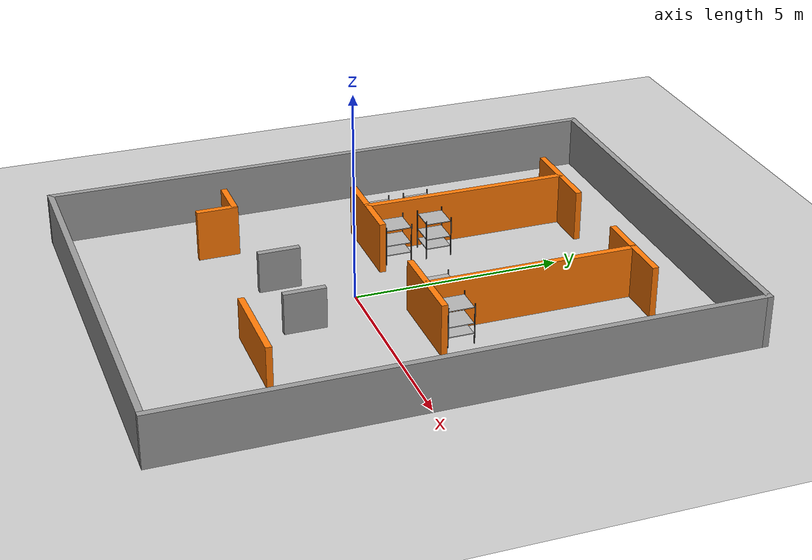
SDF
<sdf version="1.7">
 <world name="default">
  <model name="ground_plane">
   <static>1</static>
   <link name="link">
    <collision name="collision">
     <geometry><plane><normal>0 0 1</normal><size>100 100</size></plane></geometry>
     <surface><friction><ode><mu>100</mu><mu2>50</mu2></ode></friction></surface>
    </collision>
    <visual name="visual">
     <cast_shadows>0</cast_shadows>
     <geometry><plane><normal>0 0 1</normal><size>100 100</size></plane></geometry>
     <material>
      <script><uri>file://media/materials/scripts/gazebo.material</uri><name>Gazebo/Grey</name></script>
     </material>
    </visual>
   </link>
  </model>
  <model name="simple_shelf">
   <link name="link">
    <visual name="bottom_shelf_visual">
     <geometry><box><size>0.6 0.6 0.02</size></box></geometry>
     <pose>0 0 0.25 0 -0 0</pose>
     <material><ambient>0.6 0.6 0.6 1</ambient><diffuse>0.7 0.7 0.7 1</diffuse></material>
    </visual>
    <collision name="bottom_shelf_collision">
     <geometry><box><size>0.6 0.6 0.02</size></box></geometry>
     <pose>0 0 0.25 0 -0 0</pose>
    </collision>
    <visual name="middle_shelf_visual">
     <geometry><box><size>0.6 0.6 0.02</size></box></geometry>
     <pose>0 0 0.5 0 -0 0</pose>
     <material><ambient>0.6 0.6 0.6 1</ambient><diffuse>0.7 0.7 0.7 1</diffuse></material>
    </visual>
    <collision name="middle_shelf_collision">
     <geometry><box><size>0.6 0.6 0.02</size></box></geometry>
     <pose>0 0 0.5 0 -0 0</pose>
    </collision>
    <visual name="top_shelf_visual">
     <geometry><box><size>0.6 0.6 0.02</size></box></geometry>
     <pose>0 0 0.9 0 -0 0</pose>
     <material><ambient>0.6 0.6 0.6 1</ambient><diffuse>0.7 0.7 0.7 1</diffuse></material>
    </visual>
    <collision name="top_shelf_collision">
     <geometry><box><size>0.6 0.6 0.02</size></box></geometry>
     <pose>0 0 0.9 0 -0 0</pose>
    </collision>
    <visual name="left_support_visual">
     <geometry><box><size>0.02 0.02 1</size></box></geometry>
     <pose>-0.31 -0.31 0.5 0 -0 0</pose>
     <material><ambient>0.3 0.3 0.3 1</ambient><diffuse>0.3 0.3 0.3 1</diffuse></material>
    </visual>
    <collision name="left_support_collision">
     <geometry><box><size>0.02 0.02 1</size></box></geometry>
     <pose>-0.31 -0.31 0.5 0 -0 0</pose>
    </collision>
    <visual name="right_support_visual">
     <geometry><box><size>0.02 0.02 1</size></box></geometry>
     <pose>0.31 -0.31 0.5 0 -0 0</pose>
     <material><ambient>0.3 0.3 0.3 1</ambient><diffuse>0.3 0.3 0.3 1</diffuse></material>
    </visual>
    <collision name="right_support_collision">
     <geometry><box><size>0.02 0.02 1</size></box></geometry>
     <pose>0.31 -0.31 0.5 0 -0 0</pose>
    </collision>
    <visual name="front_left_support_visual">
     <geometry><box><size>0.02 0.02 1</size></box></geometry>
     <pose>-0.31 0.31 0.5 0 -0 0</pose>
     <material><ambient>0.3 0.3 0.3 1</ambient><diffuse>0.3 0.3 0.3 1</diffuse></material>
    </visual>
    <collision name="front_left_support_collision">
     <geometry><box><size>0.02 0.02 1</size></box></geometry>
     <pose>-0.31 0.31 0.5 0 -0 0</pose>
    </collision>
    <visual name="front_right_support_visual">
     <geometry><box><size>0.02 0.02 1</size></box></geometry>
     <pose>0.31 0.31 0.5 0 -0 0</pose>
     <material><ambient>0.3 0.3 0.3 1</ambient><diffuse>0.3 0.3 0.3 1</diffuse></material>
    </visual>
    <collision name="front_right_support_collision">
     <geometry><box><size>0.02 0.02 1</size></box></geometry>
     <pose>0.31 0.31 0.5 0 -0 0</pose>
    </collision>
    <inertial>
     <inertia><ixx>1</ixx><ixy>0</ixy><ixz>0</ixz><iyy>1</iyy><iyz>0</iyz><izz>1</izz></inertia>
     <mass>1</mass>
    </inertial>
   </link>
   <pose>-1.5 1.5 -1e-06 -1e-06 -1e-06 0</pose>
  </model>
  <model name="simple_shelf_0">
   <link name="link">
    <visual name="bottom_shelf_visual">
     <geometry><box><size>0.6 0.6 0.02</size></box></geometry>
     <pose>0 0 0.25 0 -0 0</pose>
     <material><ambient>0.6 0.6 0.6 1</ambient><diffuse>0.7 0.7 0.7 1</diffuse></material>
    </visual>
    <collision name="bottom_shelf_collision">
     <geometry><box><size>0.6 0.6 0.02</size></box></geometry>
     <pose>0 0 0.25 0 -0 0</pose>
    </collision>
    <visual name="middle_shelf_visual">
     <geometry><box><size>0.6 0.6 0.02</size></box></geometry>
     <pose>0 0 0.5 0 -0 0</pose>
     <material><ambient>0.6 0.6 0.6 1</ambient><diffuse>0.7 0.7 0.7 1</diffuse></material>
    </visual>
    <collision name="middle_shelf_collision">
     <geometry><box><size>0.6 0.6 0.02</size></box></geometry>
     <pose>0 0 0.5 0 -0 0</pose>
    </collision>
    <visual name="top_shelf_visual">
     <geometry><box><size>0.6 0.6 0.02</size></box></geometry>
     <pose>0 0 0.9 0 -0 0</pose>
     <material><ambient>0.6 0.6 0.6 1</ambient><diffuse>0.7 0.7 0.7 1</diffuse></material>
    </visual>
    <collision name="top_shelf_collision">
     <geometry><box><size>0.6 0.6 0.02</size></box></geometry>
     <pose>0 0 0.9 0 -0 0</pose>
    </collision>
    <visual name="left_support_visual">
     <geometry><box><size>0.02 0.02 1</size></box></geometry>
     <pose>-0.31 -0.31 0.5 0 -0 0</pose>
     <material><ambient>0.3 0.3 0.3 1</ambient><diffuse>0.3 0.3 0.3 1</diffuse></material>
    </visual>
    <collision name="left_support_collision">
     <geometry><box><size>0.02 0.02 1</size></box></geometry>
     <pose>-0.31 -0.31 0.5 0 -0 0</pose>
    </collision>
    <visual name="right_support_visual">
     <geometry><box><size>0.02 0.02 1</size></box></geometry>
     <pose>0.31 -0.31 0.5 0 -0 0</pose>
     <material><ambient>0.3 0.3 0.3 1</ambient><diffuse>0.3 0.3 0.3 1</diffuse></material>
    </visual>
    <collision name="right_support_collision">
     <geometry><box><size>0.02 0.02 1</size></box></geometry>
     <pose>0.31 -0.31 0.5 0 -0 0</pose>
    </collision>
    <visual name="front_left_support_visual">
     <geometry><box><size>0.02 0.02 1</size></box></geometry>
     <pose>-0.31 0.31 0.5 0 -0 0</pose>
     <material><ambient>0.3 0.3 0.3 1</ambient><diffuse>0.3 0.3 0.3 1</diffuse></material>
    </visual>
    <collision name="front_left_support_collision">
     <geometry><box><size>0.02 0.02 1</size></box></geometry>
     <pose>-0.31 0.31 0.5 0 -0 0</pose>
    </collision>
    <visual name="front_right_support_visual">
     <geometry><box><size>0.02 0.02 1</size></box></geometry>
     <pose>0.31 0.31 0.5 0 -0 0</pose>
     <material><ambient>0.3 0.3 0.3 1</ambient><diffuse>0.3 0.3 0.3 1</diffuse></material>
    </visual>
    <collision name="front_right_support_collision">
     <geometry><box><size>0.02 0.02 1</size></box></geometry>
     <pose>0.31 0.31 0.5 0 -0 0</pose>
    </collision>
    <inertial>
     <inertia><ixx>1</ixx><ixy>0</ixy><ixz>0</ixz><iyy>1</iyy><iyz>0</iyz><izz>1</izz></inertia>
     <mass>1</mass>
    </inertial>
   </link>
   <pose>-2.5 1.5 -1e-06 -1e-06 -1e-06 0</pose>
  </model>
  <model name="simple_shelf_1">
   <link name="link">
    <visual name="bottom_shelf_visual">
     <geometry><box><size>0.6 0.6 0.02</size></box></geometry>
     <pose>0 0 0.25 0 -0 0</pose>
     <material><ambient>0.6 0.6 0.6 1</ambient><diffuse>0.7 0.7 0.7 1</diffuse></material>
    </visual>
    <collision name="bottom_shelf_collision">
     <geometry><box><size>0.6 0.6 0.02</size></box></geometry>
     <pose>0 0 0.25 0 -0 0</pose>
    </collision>
    <visual name="middle_shelf_visual">
     <geometry><box><size>0.6 0.6 0.02</size></box></geometry>
     <pose>0 0 0.5 0 -0 0</pose>
     <material><ambient>0.6 0.6 0.6 1</ambient><diffuse>0.7 0.7 0.7 1</diffuse></material>
    </visual>
    <collision name="middle_shelf_collision">
     <geometry><box><size>0.6 0.6 0.02</size></box></geometry>
     <pose>0 0 0.5 0 -0 0</pose>
    </collision>
    <visual name="top_shelf_visual">
     <geometry><box><size>0.6 0.6 0.02</size></box></geometry>
     <pose>0 0 0.9 0 -0 0</pose>
     <material><ambient>0.6 0.6 0.6 1</ambient><diffuse>0.7 0.7 0.7 1</diffuse></material>
    </visual>
    <collision name="top_shelf_collision">
     <geometry><box><size>0.6 0.6 0.02</size></box></geometry>
     <pose>0 0 0.9 0 -0 0</pose>
    </collision>
    <visual name="left_support_visual">
     <geometry><box><size>0.02 0.02 1</size></box></geometry>
     <pose>-0.31 -0.31 0.5 0 -0 0</pose>
     <material><ambient>0.3 0.3 0.3 1</ambient><diffuse>0.3 0.3 0.3 1</diffuse></material>
    </visual>
    <collision name="left_support_collision">
     <geometry><box><size>0.02 0.02 1</size></box></geometry>
     <pose>-0.31 -0.31 0.5 0 -0 0</pose>
    </collision>
    <visual name="right_support_visual">
     <geometry><box><size>0.02 0.02 1</size></box></geometry>
     <pose>0.31 -0.31 0.5 0 -0 0</pose>
     <material><ambient>0.3 0.3 0.3 1</ambient><diffuse>0.3 0.3 0.3 1</diffuse></material>
    </visual>
    <collision name="right_support_collision">
     <geometry><box><size>0.02 0.02 1</size></box></geometry>
     <pose>0.31 -0.31 0.5 0 -0 0</pose>
    </collision>
    <visual name="front_left_support_visual">
     <geometry><box><size>0.02 0.02 1</size></box></geometry>
     <pose>-0.31 0.31 0.5 0 -0 0</pose>
     <material><ambient>0.3 0.3 0.3 1</ambient><diffuse>0.3 0.3 0.3 1</diffuse></material>
    </visual>
    <collision name="front_left_support_collision">
     <geometry><box><size>0.02 0.02 1</size></box></geometry>
     <pose>-0.31 0.31 0.5 0 -0 0</pose>
    </collision>
    <visual name="front_right_support_visual">
     <geometry><box><size>0.02 0.02 1</size></box></geometry>
     <pose>0.31 0.31 0.5 0 -0 0</pose>
     <material><ambient>0.3 0.3 0.3 1</ambient><diffuse>0.3 0.3 0.3 1</diffuse></material>
    </visual>
    <collision name="front_right_support_collision">
     <geometry><box><size>0.02 0.02 1</size></box></geometry>
     <pose>0.31 0.31 0.5 0 -0 0</pose>
    </collision>
    <inertial>
     <inertia><ixx>1</ixx><ixy>0</ixy><ixz>0</ixz><iyy>1</iyy><iyz>0</iyz><izz>1</izz></inertia>
     <mass>1</mass>
    </inertial>
   </link>
   <pose>1.5 1.5 -1e-06 -1e-06 -1e-06 0</pose>
  </model>
  <model name="simple_shelf_2">
   <link name="link">
    <visual name="bottom_shelf_visual">
     <geometry><box><size>0.6 0.6 0.02</size></box></geometry>
     <pose>0 0 0.25 0 -0 0</pose>
     <material><ambient>0.6 0.6 0.6 1</ambient><diffuse>0.7 0.7 0.7 1</diffuse></material>
    </visual>
    <collision name="bottom_shelf_collision">
     <geometry><box><size>0.6 0.6 0.02</size></box></geometry>
     <pose>0 0 0.25 0 -0 0</pose>
    </collision>
    <visual name="middle_shelf_visual">
     <geometry><box><size>0.6 0.6 0.02</size></box></geometry>
     <pose>0 0 0.5 0 -0 0</pose>
     <material><ambient>0.6 0.6 0.6 1</ambient><diffuse>0.7 0.7 0.7 1</diffuse></material>
    </visual>
    <collision name="middle_shelf_collision">
     <geometry><box><size>0.6 0.6 0.02</size></box></geometry>
     <pose>0 0 0.5 0 -0 0</pose>
    </collision>
    <visual name="top_shelf_visual">
     <geometry><box><size>0.6 0.6 0.02</size></box></geometry>
     <pose>0 0 0.9 0 -0 0</pose>
     <material><ambient>0.6 0.6 0.6 1</ambient><diffuse>0.7 0.7 0.7 1</diffuse></material>
    </visual>
    <collision name="top_shelf_collision">
     <geometry><box><size>0.6 0.6 0.02</size></box></geometry>
     <pose>0 0 0.9 0 -0 0</pose>
    </collision>
    <visual name="left_support_visual">
     <geometry><box><size>0.02 0.02 1</size></box></geometry>
     <pose>-0.31 -0.31 0.5 0 -0 0</pose>
     <material><ambient>0.3 0.3 0.3 1</ambient><diffuse>0.3 0.3 0.3 1</diffuse></material>
    </visual>
    <collision name="left_support_collision">
     <geometry><box><size>0.02 0.02 1</size></box></geometry>
     <pose>-0.31 -0.31 0.5 0 -0 0</pose>
    </collision>
    <visual name="right_support_visual">
     <geometry><box><size>0.02 0.02 1</size></box></geometry>
     <pose>0.31 -0.31 0.5 0 -0 0</pose>
     <material><ambient>0.3 0.3 0.3 1</ambient><diffuse>0.3 0.3 0.3 1</diffuse></material>
    </visual>
    <collision name="right_support_collision">
     <geometry><box><size>0.02 0.02 1</size></box></geometry>
     <pose>0.31 -0.31 0.5 0 -0 0</pose>
    </collision>
    <visual name="front_left_support_visual">
     <geometry><box><size>0.02 0.02 1</size></box></geometry>
     <pose>-0.31 0.31 0.5 0 -0 0</pose>
     <material><ambient>0.3 0.3 0.3 1</ambient><diffuse>0.3 0.3 0.3 1</diffuse></material>
    </visual>
    <collision name="front_left_support_collision">
     <geometry><box><size>0.02 0.02 1</size></box></geometry>
     <pose>-0.31 0.31 0.5 0 -0 0</pose>
    </collision>
    <visual name="front_right_support_visual">
     <geometry><box><size>0.02 0.02 1</size></box></geometry>
     <pose>0.31 0.31 0.5 0 -0 0</pose>
     <material><ambient>0.3 0.3 0.3 1</ambient><diffuse>0.3 0.3 0.3 1</diffuse></material>
    </visual>
    <collision name="front_right_support_collision">
     <geometry><box><size>0.02 0.02 1</size></box></geometry>
     <pose>0.31 0.31 0.5 0 -0 0</pose>
    </collision>
    <inertial>
     <inertia><ixx>1</ixx><ixy>0</ixy><ixz>0</ixz><iyy>1</iyy><iyz>0</iyz><izz>1</izz></inertia>
     <mass>1</mass>
    </inertial>
   </link>
   <pose>2.5 1.5 -1e-06 -1e-06 -1e-06 0</pose>
  </model>
  <model name="simple_shelf_3">
   <link name="link">
    <visual name="bottom_shelf_visual">
     <geometry><box><size>0.6 0.6 0.02</size></box></geometry>
     <pose>0 0 0.25 0 -0 0</pose>
     <material><ambient>0.6 0.6 0.6 1</ambient><diffuse>0.7 0.7 0.7 1</diffuse></material>
    </visual>
    <collision name="bottom_shelf_collision">
     <geometry><box><size>0.6 0.6 0.02</size></box></geometry>
     <pose>0 0 0.25 0 -0 0</pose>
    </collision>
    <visual name="middle_shelf_visual">
     <geometry><box><size>0.6 0.6 0.02</size></box></geometry>
     <pose>0 0 0.5 0 -0 0</pose>
     <material><ambient>0.6 0.6 0.6 1</ambient><diffuse>0.7 0.7 0.7 1</diffuse></material>
    </visual>
    <collision name="middle_shelf_collision">
     <geometry><box><size>0.6 0.6 0.02</size></box></geometry>
     <pose>0 0 0.5 0 -0 0</pose>
    </collision>
    <visual name="top_shelf_visual">
     <geometry><box><size>0.6 0.6 0.02</size></box></geometry>
     <pose>0 0 0.9 0 -0 0</pose>
     <material><ambient>0.6 0.6 0.6 1</ambient><diffuse>0.7 0.7 0.7 1</diffuse></material>
    </visual>
    <collision name="top_shelf_collision">
     <geometry><box><size>0.6 0.6 0.02</size></box></geometry>
     <pose>0 0 0.9 0 -0 0</pose>
    </collision>
    <visual name="left_support_visual">
     <geometry><box><size>0.02 0.02 1</size></box></geometry>
     <pose>-0.31 -0.31 0.5 0 -0 0</pose>
     <material><ambient>0.3 0.3 0.3 1</ambient><diffuse>0.3 0.3 0.3 1</diffuse></material>
    </visual>
    <collision name="left_support_collision">
     <geometry><box><size>0.02 0.02 1</size></box></geometry>
     <pose>-0.31 -0.31 0.5 0 -0 0</pose>
    </collision>
    <visual name="right_support_visual">
     <geometry><box><size>0.02 0.02 1</size></box></geometry>
     <pose>0.31 -0.31 0.5 0 -0 0</pose>
     <material><ambient>0.3 0.3 0.3 1</ambient><diffuse>0.3 0.3 0.3 1</diffuse></material>
    </visual>
    <collision name="right_support_collision">
     <geometry><box><size>0.02 0.02 1</size></box></geometry>
     <pose>0.31 -0.31 0.5 0 -0 0</pose>
    </collision>
    <visual name="front_left_support_visual">
     <geometry><box><size>0.02 0.02 1</size></box></geometry>
     <pose>-0.31 0.31 0.5 0 -0 0</pose>
     <material><ambient>0.3 0.3 0.3 1</ambient><diffuse>0.3 0.3 0.3 1</diffuse></material>
    </visual>
    <collision name="front_left_support_collision">
     <geometry><box><size>0.02 0.02 1</size></box></geometry>
     <pose>-0.31 0.31 0.5 0 -0 0</pose>
    </collision>
    <visual name="front_right_support_visual">
     <geometry><box><size>0.02 0.02 1</size></box></geometry>
     <pose>0.31 0.31 0.5 0 -0 0</pose>
     <material><ambient>0.3 0.3 0.3 1</ambient><diffuse>0.3 0.3 0.3 1</diffuse></material>
    </visual>
    <collision name="front_right_support_collision">
     <geometry><box><size>0.02 0.02 1</size></box></geometry>
     <pose>0.31 0.31 0.5 0 -0 0</pose>
    </collision>
    <inertial>
     <inertia><ixx>1</ixx><ixy>0</ixy><ixz>0</ixz><iyy>1</iyy><iyz>0</iyz><izz>1</izz></inertia>
     <mass>1</mass>
    </inertial>
   </link>
   <pose>-1.5 2.5 -1e-06 -1e-06 -1e-06 0</pose>
  </model>
  <model name="simple_shelf_7">
   <link name="link">
    <visual name="bottom_shelf_visual">
     <geometry><box><size>0.6 0.6 0.02</size></box></geometry>
     <pose>0 0 0.25 0 -0 0</pose>
     <material><ambient>0.6 0.6 0.6 1</ambient><diffuse>0.7 0.7 0.7 1</diffuse></material>
    </visual>
    <collision name="bottom_shelf_collision">
     <geometry><box><size>0.6 0.6 0.02</size></box></geometry>
     <pose>0 0 0.25 0 -0 0</pose>
    </collision>
    <visual name="middle_shelf_visual">
     <geometry><box><size>0.6 0.6 0.02</size></box></geometry>
     <pose>0 0 0.5 0 -0 0</pose>
     <material><ambient>0.6 0.6 0.6 1</ambient><diffuse>0.7 0.7 0.7 1</diffuse></material>
    </visual>
    <collision name="middle_shelf_collision">
     <geometry><box><size>0.6 0.6 0.02</size></box></geometry>
     <pose>0 0 0.5 0 -0 0</pose>
    </collision>
    <visual name="top_shelf_visual">
     <geometry><box><size>0.6 0.6 0.02</size></box></geometry>
     <pose>0 0 0.9 0 -0 0</pose>
     <material><ambient>0.6 0.6 0.6 1</ambient><diffuse>0.7 0.7 0.7 1</diffuse></material>
    </visual>
    <collision name="top_shelf_collision">
     <geometry><box><size>0.6 0.6 0.02</size></box></geometry>
     <pose>0 0 0.9 0 -0 0</pose>
    </collision>
    <visual name="left_support_visual">
     <geometry><box><size>0.02 0.02 1</size></box></geometry>
     <pose>-0.31 -0.31 0.5 0 -0 0</pose>
     <material><ambient>0.3 0.3 0.3 1</ambient><diffuse>0.3 0.3 0.3 1</diffuse></material>
    </visual>
    <collision name="left_support_collision">
     <geometry><box><size>0.02 0.02 1</size></box></geometry>
     <pose>-0.31 -0.31 0.5 0 -0 0</pose>
    </collision>
    <visual name="right_support_visual">
     <geometry><box><size>0.02 0.02 1</size></box></geometry>
     <pose>0.31 -0.31 0.5 0 -0 0</pose>
     <material><ambient>0.3 0.3 0.3 1</ambient><diffuse>0.3 0.3 0.3 1</diffuse></material>
    </visual>
    <collision name="right_support_collision">
     <geometry><box><size>0.02 0.02 1</size></box></geometry>
     <pose>0.31 -0.31 0.5 0 -0 0</pose>
    </collision>
    <visual name="front_left_support_visual">
     <geometry><box><size>0.02 0.02 1</size></box></geometry>
     <pose>-0.31 0.31 0.5 0 -0 0</pose>
     <material><ambient>0.3 0.3 0.3 1</ambient><diffuse>0.3 0.3 0.3 1</diffuse></material>
    </visual>
    <collision name="front_left_support_collision">
     <geometry><box><size>0.02 0.02 1</size></box></geometry>
     <pose>-0.31 0.31 0.5 0 -0 0</pose>
    </collision>
    <visual name="front_right_support_visual">
     <geometry><box><size>0.02 0.02 1</size></box></geometry>
     <pose>0.31 0.31 0.5 0 -0 0</pose>
     <material><ambient>0.3 0.3 0.3 1</ambient><diffuse>0.3 0.3 0.3 1</diffuse></material>
    </visual>
    <collision name="front_right_support_collision">
     <geometry><box><size>0.02 0.02 1</size></box></geometry>
     <pose>0.31 0.31 0.5 0 -0 0</pose>
    </collision>
    <inertial>
     <inertia><ixx>1</ixx><ixy>0</ixy><ixz>0</ixz><iyy>1</iyy><iyz>0</iyz><izz>1</izz></inertia>
     <mass>1</mass>
    </inertial>
   </link>
   <pose>-2.5 2.5 -1e-06 -1e-06 -1e-06 0</pose>
  </model>
  <model name="warehouse_building">
   <link name="Wall_17">
    <pose>5 -1.1e-05 0 0 -0 1.5708</pose>
    <visual name="Wall_17_Visual">
     <pose>0 0 0.625 0 -0 0</pose>
     <geometry><box><size>13.873 0.15 1.25</size></box></geometry>
     <material>
      <script><uri>file://media/materials/scripts/gazebo.material</uri><name>Gazebo/Grey</name></script>
      <ambient>1 1 1 1</ambient>
      <shader type="pixel"/>
     </material>
     <meta><layer>0</layer></meta>
    </visual>
    <collision name="Wall_17_Collision">
     <pose>0 0 0.625 0 -0 0</pose>
     <geometry><box><size>13.873 0.15 1.25</size></box></geometry>
     <surface>
      <friction>
       <ode><mu>1</mu><mu2>1</mu2><fdir1>0 0 0</fdir1><slip1>0</slip1><slip2>0</slip2></ode>
       <torsional>
        <coefficient>1</coefficient>
        <patch_radius>0</patch_radius>
        <surface_radius>0</surface_radius>
        <use_patch_radius>1</use_patch_radius>
        <ode><slip>0</slip></ode>
       </torsional>
      </friction>
      <bounce><restitution_coefficient>0</restitution_coefficient><threshold>1e+06</threshold></bounce>
      <contact>
       <collide_without_contact>0</collide_without_contact>
       <collide_without_contact_bitmask>1</collide_without_contact_bitmask>
       <collide_bitmask>1</collide_bitmask>
       <ode>
        <soft_cfm>0</soft_cfm>
        <soft_erp>0.2</soft_erp>
        <kp>1e+13</kp>
        <kd>1</kd>
        <max_vel>0.01</max_vel>
        <min_depth>0</min_depth>
       </ode>
       <bullet>
        <split_impulse>1</split_impulse>
        <split_impulse_penetration_threshold>-0.01</split_impulse_penetration_threshold>
        <soft_cfm>0</soft_cfm>
        <soft_erp>0.2</soft_erp>
        <kp>1e+13</kp>
        <kd>1</kd>
       </bullet>
      </contact>
     </surface>
    </collision>
   </link>
   <link name="Wall_20">
    <pose>-5 -0.001511 0 0 -0 1.5708</pose>
    <visual name="Wall_20_Visual">
     <pose>0 0 0.625 0 -0 0</pose>
     <geometry><box><size>13.87 0.15 1.25</size></box></geometry>
     <material>
      <script><uri>file://media/materials/scripts/gazebo.material</uri><name>Gazebo/Grey</name></script>
      <ambient>1 1 1 1</ambient>
      <shader type="pixel"/>
     </material>
     <meta><layer>0</layer></meta>
    </visual>
    <collision name="Wall_20_Collision">
     <pose>0 0 0.625 0 -0 0</pose>
     <geometry><box><size>13.87 0.15 1.25</size></box></geometry>
     <surface>
      <friction>
       <ode><mu>1</mu><mu2>1</mu2><fdir1>0 0 0</fdir1><slip1>0</slip1><slip2>0</slip2></ode>
       <torsional>
        <coefficient>1</coefficient>
        <patch_radius>0</patch_radius>
        <surface_radius>0</surface_radius>
        <use_patch_radius>1</use_patch_radius>
        <ode><slip>0</slip></ode>
       </torsional>
      </friction>
      <bounce><restitution_coefficient>0</restitution_coefficient><threshold>1e+06</threshold></bounce>
      <contact>
       <collide_without_contact>0</collide_without_contact>
       <collide_without_contact_bitmask>1</collide_without_contact_bitmask>
       <collide_bitmask>1</collide_bitmask>
       <ode>
        <soft_cfm>0</soft_cfm>
        <soft_erp>0.2</soft_erp>
        <kp>1e+13</kp>
        <kd>1</kd>
        <max_vel>0.01</max_vel>
        <min_depth>0</min_depth>
       </ode>
       <bullet>
        <split_impulse>1</split_impulse>
        <split_impulse_penetration_threshold>-0.01</split_impulse_penetration_threshold>
        <soft_cfm>0</soft_cfm>
        <soft_erp>0.2</soft_erp>
        <kp>1e+13</kp>
        <kd>1</kd>
       </bullet>
      </contact>
     </surface>
    </collision>
   </link>
   <link name="Wall_22">
    <pose>0 6.85999 0 0 -0 0.0003</pose>
    <visual name="Wall_22_Visual">
     <pose>0 0 0.625 0 -0 0</pose>
     <geometry><box><size>10.15 0.15 1.25</size></box></geometry>
     <material>
      <script><uri>file://media/materials/scripts/gazebo.material</uri><name>Gazebo/Grey</name></script>
      <ambient>1 1 1 1</ambient>
      <shader type="pixel"/>
     </material>
     <meta><layer>0</layer></meta>
    </visual>
    <collision name="Wall_22_Collision">
     <pose>0 0 0.625 0 -0 0</pose>
     <geometry><box><size>10.15 0.15 1.25</size></box></geometry>
     <surface>
      <friction>
       <ode><mu>1</mu><mu2>1</mu2><fdir1>0 0 0</fdir1><slip1>0</slip1><slip2>0</slip2></ode>
       <torsional>
        <coefficient>1</coefficient>
        <patch_radius>0</patch_radius>
        <surface_radius>0</surface_radius>
        <use_patch_radius>1</use_patch_radius>
        <ode><slip>0</slip></ode>
       </torsional>
      </friction>
      <bounce><restitution_coefficient>0</restitution_coefficient><threshold>1e+06</threshold></bounce>
      <contact>
       <collide_without_contact>0</collide_without_contact>
       <collide_without_contact_bitmask>1</collide_without_contact_bitmask>
       <collide_bitmask>1</collide_bitmask>
       <ode>
        <soft_cfm>0</soft_cfm>
        <soft_erp>0.2</soft_erp>
        <kp>1e+13</kp>
        <kd>1</kd>
        <max_vel>0.01</max_vel>
        <min_depth>0</min_depth>
       </ode>
       <bullet>
        <split_impulse>1</split_impulse>
        <split_impulse_penetration_threshold>-0.01</split_impulse_penetration_threshold>
        <soft_cfm>0</soft_cfm>
        <soft_erp>0.2</soft_erp>
        <kp>1e+13</kp>
        <kd>1</kd>
       </bullet>
      </contact>
     </surface>
    </collision>
   </link>
   <link name="Wall_27">
    <pose>1.975 -3.76151 0 0 -0 3.14159</pose>
    <visual name="Wall_27_Visual">
     <pose>0 0 0.5 0 -0 0</pose>
     <geometry><box><size>2.2 0.15 1</size></box></geometry>
     <material>
      <script><uri>file://media/materials/scripts/gazebo.material</uri><name>Gazebo/Grey</name></script>
      <ambient>0.996078 0.47451 0.0196078 1</ambient>
      <shader type="pixel"/>
     </material>
     <meta><layer>0</layer></meta>
    </visual>
    <collision name="Wall_27_Collision">
     <pose>0 0 0.5 0 -0 0</pose>
     <geometry><box><size>2.2 0.15 1</size></box></geometry>
     <surface>
      <friction>
       <ode><mu>1</mu><mu2>1</mu2><fdir1>0 0 0</fdir1><slip1>0</slip1><slip2>0</slip2></ode>
       <torsional>
        <coefficient>1</coefficient>
        <patch_radius>0</patch_radius>
        <surface_radius>0</surface_radius>
        <use_patch_radius>1</use_patch_radius>
        <ode><slip>0</slip></ode>
       </torsional>
      </friction>
      <bounce><restitution_coefficient>0</restitution_coefficient><threshold>1e+06</threshold></bounce>
      <contact>
       <collide_without_contact>0</collide_without_contact>
       <collide_without_contact_bitmask>1</collide_without_contact_bitmask>
       <collide_bitmask>1</collide_bitmask>
       <ode>
        <soft_cfm>0</soft_cfm>
        <soft_erp>0.2</soft_erp>
        <kp>1e+13</kp>
        <kd>1</kd>
        <max_vel>0.01</max_vel>
        <min_depth>0</min_depth>
       </ode>
       <bullet>
        <split_impulse>1</split_impulse>
        <split_impulse_penetration_threshold>-0.01</split_impulse_penetration_threshold>
        <soft_cfm>0</soft_cfm>
        <soft_erp>0.2</soft_erp>
        <kp>1e+13</kp>
        <kd>1</kd>
       </bullet>
      </contact>
     </surface>
    </collision>
   </link>
   <link name="Wall_29">
    <pose>-2 2.63849 0 0 -0 1.5708</pose>
    <visual name="Wall_29_Visual">
     <pose>0 0 0.625 0 -0 0</pose>
     <geometry><box><size>5.15 0.15 1.25</size></box></geometry>
     <material>
      <script><uri>file://media/materials/scripts/gazebo.material</uri><name>Gazebo/Grey</name></script>
      <ambient>0.996078 0.47451 0.0196078 1</ambient>
      <shader type="pixel"/>
     </material>
     <meta><layer>0</layer></meta>
    </visual>
    <collision name="Wall_29_Collision">
     <pose>0 0 0.625 0 -0 0</pose>
     <geometry><box><size>5.15 0.15 1.25</size></box></geometry>
     <surface>
      <friction>
       <ode><mu>1</mu><mu2>1</mu2><fdir1>0 0 0</fdir1><slip1>0</slip1><slip2>0</slip2></ode>
       <torsional>
        <coefficient>1</coefficient>
        <patch_radius>0</patch_radius>
        <surface_radius>0</surface_radius>
        <use_patch_radius>1</use_patch_radius>
        <ode><slip>0</slip></ode>
       </torsional>
      </friction>
      <bounce><restitution_coefficient>0</restitution_coefficient><threshold>1e+06</threshold></bounce>
      <contact>
       <collide_without_contact>0</collide_without_contact>
       <collide_without_contact_bitmask>1</collide_without_contact_bitmask>
       <collide_bitmask>1</collide_bitmask>
       <ode>
        <soft_cfm>0</soft_cfm>
        <soft_erp>0.2</soft_erp>
        <kp>1e+13</kp>
        <kd>1</kd>
        <max_vel>0.01</max_vel>
        <min_depth>0</min_depth>
       </ode>
       <bullet>
        <split_impulse>1</split_impulse>
        <split_impulse_penetration_threshold>-0.01</split_impulse_penetration_threshold>
        <soft_cfm>0</soft_cfm>
        <soft_erp>0.2</soft_erp>
        <kp>1e+13</kp>
        <kd>1</kd>
       </bullet>
      </contact>
     </surface>
    </collision>
   </link>
   <link name="Wall_31">
    <pose>-2 5.13849 0 0 -0 0</pose>
    <visual name="Wall_31_Visual">
     <pose>0 0 0.625 0 -0 0</pose>
     <geometry><box><size>2.15 0.15 1.25</size></box></geometry>
     <material>
      <script><uri>file://media/materials/scripts/gazebo.material</uri><name>Gazebo/Grey</name></script>
      <ambient>0.996078 0.47451 0.0196078 1</ambient>
      <shader type="pixel"/>
     </material>
     <meta><layer>0</layer></meta>
    </visual>
    <collision name="Wall_31_Collision">
     <pose>0 0 0.625 0 -0 0</pose>
     <geometry><box><size>2.15 0.15 1.25</size></box></geometry>
     <surface>
      <friction>
       <ode><mu>1</mu><mu2>1</mu2><fdir1>0 0 0</fdir1><slip1>0</slip1><slip2>0</slip2></ode>
       <torsional>
        <coefficient>1</coefficient>
        <patch_radius>0</patch_radius>
        <surface_radius>0</surface_radius>
        <use_patch_radius>1</use_patch_radius>
        <ode><slip>0</slip></ode>
       </torsional>
      </friction>
      <bounce><restitution_coefficient>0</restitution_coefficient><threshold>1e+06</threshold></bounce>
      <contact>
       <collide_without_contact>0</collide_without_contact>
       <collide_without_contact_bitmask>1</collide_without_contact_bitmask>
       <collide_bitmask>1</collide_bitmask>
       <ode>
        <soft_cfm>0</soft_cfm>
        <soft_erp>0.2</soft_erp>
        <kp>1e+13</kp>
        <kd>1</kd>
        <max_vel>0.01</max_vel>
        <min_depth>0</min_depth>
       </ode>
       <bullet>
        <split_impulse>1</split_impulse>
        <split_impulse_penetration_threshold>-0.01</split_impulse_penetration_threshold>
        <soft_cfm>0</soft_cfm>
        <soft_erp>0.2</soft_erp>
        <kp>1e+13</kp>
        <kd>1</kd>
       </bullet>
      </contact>
     </surface>
    </collision>
   </link>
   <link name="Wall_33">
    <pose>-2 0.138489 0 0 -0 0</pose>
    <visual name="Wall_33_Visual">
     <pose>0 0 0.625 0 -0 0</pose>
     <geometry><box><size>2.15 0.15 1.25</size></box></geometry>
     <material>
      <script><uri>file://media/materials/scripts/gazebo.material</uri><name>Gazebo/Grey</name></script>
      <ambient>0.996078 0.47451 0.0196078 1</ambient>
      <shader type="pixel"/>
     </material>
     <meta><layer>0</layer></meta>
    </visual>
    <collision name="Wall_33_Collision">
     <pose>0 0 0.625 0 -0 0</pose>
     <geometry><box><size>2.15 0.15 1.25</size></box></geometry>
     <surface>
      <friction>
       <ode><mu>1</mu><mu2>1</mu2><fdir1>0 0 0</fdir1><slip1>0</slip1><slip2>0</slip2></ode>
       <torsional>
        <coefficient>1</coefficient>
        <patch_radius>0</patch_radius>
        <surface_radius>0</surface_radius>
        <use_patch_radius>1</use_patch_radius>
        <ode><slip>0</slip></ode>
       </torsional>
      </friction>
      <bounce><restitution_coefficient>0</restitution_coefficient><threshold>1e+06</threshold></bounce>
      <contact>
       <collide_without_contact>0</collide_without_contact>
       <collide_without_contact_bitmask>1</collide_without_contact_bitmask>
       <collide_bitmask>1</collide_bitmask>
       <ode>
        <soft_cfm>0</soft_cfm>
        <soft_erp>0.2</soft_erp>
        <kp>1e+13</kp>
        <kd>1</kd>
        <max_vel>0.01</max_vel>
        <min_depth>0</min_depth>
       </ode>
       <bullet>
        <split_impulse>1</split_impulse>
        <split_impulse_penetration_threshold>-0.01</split_impulse_penetration_threshold>
        <soft_cfm>0</soft_cfm>
        <soft_erp>0.2</soft_erp>
        <kp>1e+13</kp>
        <kd>1</kd>
       </bullet>
      </contact>
     </surface>
    </collision>
   </link>
   <link name="Wall_35">
    <pose>2 2.63849 0 0 0 -1.5708</pose>
    <visual name="Wall_35_Visual">
     <pose>0 0 0.625 0 -0 0</pose>
     <geometry><box><size>5.15 0.15 1.25</size></box></geometry>
     <material>
      <script><uri>file://media/materials/scripts/gazebo.material</uri><name>Gazebo/Grey</name></script>
      <ambient>0.996078 0.47451 0.0196078 1</ambient>
      <shader type="pixel"/>
     </material>
     <meta><layer>0</layer></meta>
    </visual>
    <collision name="Wall_35_Collision">
     <pose>0 0 0.625 0 -0 0</pose>
     <geometry><box><size>5.15 0.15 1.25</size></box></geometry>
     <surface>
      <friction>
       <ode><mu>1</mu><mu2>1</mu2><fdir1>0 0 0</fdir1><slip1>0</slip1><slip2>0</slip2></ode>
       <torsional>
        <coefficient>1</coefficient>
        <patch_radius>0</patch_radius>
        <surface_radius>0</surface_radius>
        <use_patch_radius>1</use_patch_radius>
        <ode><slip>0</slip></ode>
       </torsional>
      </friction>
      <bounce><restitution_coefficient>0</restitution_coefficient><threshold>1e+06</threshold></bounce>
      <contact>
       <collide_without_contact>0</collide_without_contact>
       <collide_without_contact_bitmask>1</collide_without_contact_bitmask>
       <collide_bitmask>1</collide_bitmask>
       <ode>
        <soft_cfm>0</soft_cfm>
        <soft_erp>0.2</soft_erp>
        <kp>1e+13</kp>
        <kd>1</kd>
        <max_vel>0.01</max_vel>
        <min_depth>0</min_depth>
       </ode>
       <bullet>
        <split_impulse>1</split_impulse>
        <split_impulse_penetration_threshold>-0.01</split_impulse_penetration_threshold>
        <soft_cfm>0</soft_cfm>
        <soft_erp>0.2</soft_erp>
        <kp>1e+13</kp>
        <kd>1</kd>
       </bullet>
      </contact>
     </surface>
    </collision>
   </link>
   <link name="Wall_39">
    <pose>2 0.138489 0 0 -0 0</pose>
    <visual name="Wall_39_Visual">
     <pose>0 0 0.625 0 -0 0</pose>
     <geometry><box><size>2.15 0.15 1.25</size></box></geometry>
     <material>
      <script><uri>file://media/materials/scripts/gazebo.material</uri><name>Gazebo/Grey</name></script>
      <ambient>0.996078 0.47451 0.0196078 1</ambient>
      <shader type="pixel"/>
     </material>
     <meta><layer>0</layer></meta>
    </visual>
    <collision name="Wall_39_Collision">
     <pose>0 0 0.625 0 -0 0</pose>
     <geometry><box><size>2.15 0.15 1.25</size></box></geometry>
     <surface>
      <friction>
       <ode><mu>1</mu><mu2>1</mu2><fdir1>0 0 0</fdir1><slip1>0</slip1><slip2>0</slip2></ode>
       <torsional>
        <coefficient>1</coefficient>
        <patch_radius>0</patch_radius>
        <surface_radius>0</surface_radius>
        <use_patch_radius>1</use_patch_radius>
        <ode><slip>0</slip></ode>
       </torsional>
      </friction>
      <bounce><restitution_coefficient>0</restitution_coefficient><threshold>1e+06</threshold></bounce>
      <contact>
       <collide_without_contact>0</collide_without_contact>
       <collide_without_contact_bitmask>1</collide_without_contact_bitmask>
       <collide_bitmask>1</collide_bitmask>
       <ode>
        <soft_cfm>0</soft_cfm>
        <soft_erp>0.2</soft_erp>
        <kp>1e+13</kp>
        <kd>1</kd>
        <max_vel>0.01</max_vel>
        <min_depth>0</min_depth>
       </ode>
       <bullet>
        <split_impulse>1</split_impulse>
        <split_impulse_penetration_threshold>-0.01</split_impulse_penetration_threshold>
        <soft_cfm>0</soft_cfm>
        <soft_erp>0.2</soft_erp>
        <kp>1e+13</kp>
        <kd>1</kd>
       </bullet>
      </contact>
     </surface>
    </collision>
   </link>
   <link name="Wall_41">
    <pose>2 5.13849 0 0 -0 3.14159</pose>
    <visual name="Wall_41_Visual">
     <pose>0 0 0.625 0 -0 0</pose>
     <geometry><box><size>2.15 0.15 1.25</size></box></geometry>
     <material>
      <script><uri>file://media/materials/scripts/gazebo.material</uri><name>Gazebo/Grey</name></script>
      <ambient>0.996078 0.47451 0.0196078 1</ambient>
      <shader type="pixel"/>
     </material>
     <meta><layer>0</layer></meta>
    </visual>
    <collision name="Wall_41_Collision">
     <pose>0 0 0.625 0 -0 0</pose>
     <geometry><box><size>2.15 0.15 1.25</size></box></geometry>
     <surface>
      <friction>
       <ode><mu>1</mu><mu2>1</mu2><fdir1>0 0 0</fdir1><slip1>0</slip1><slip2>0</slip2></ode>
       <torsional>
        <coefficient>1</coefficient>
        <patch_radius>0</patch_radius>
        <surface_radius>0</surface_radius>
        <use_patch_radius>1</use_patch_radius>
        <ode><slip>0</slip></ode>
       </torsional>
      </friction>
      <bounce><restitution_coefficient>0</restitution_coefficient><threshold>1e+06</threshold></bounce>
      <contact>
       <collide_without_contact>0</collide_without_contact>
       <collide_without_contact_bitmask>1</collide_without_contact_bitmask>
       <collide_bitmask>1</collide_bitmask>
       <ode>
        <soft_cfm>0</soft_cfm>
        <soft_erp>0.2</soft_erp>
        <kp>1e+13</kp>
        <kd>1</kd>
        <max_vel>0.01</max_vel>
        <min_depth>0</min_depth>
       </ode>
       <bullet>
        <split_impulse>1</split_impulse>
        <split_impulse_penetration_threshold>-0.01</split_impulse_penetration_threshold>
        <soft_cfm>0</soft_cfm>
        <soft_erp>0.2</soft_erp>
        <kp>1e+13</kp>
        <kd>1</kd>
       </bullet>
      </contact>
     </surface>
    </collision>
   </link>
   <link name="Wall_43">
    <pose>0 -6.86151 0 0 -0 0</pose>
    <visual name="Wall_43_Visual">
     <pose>0 0 0.625 0 -0 0</pose>
     <geometry><box><size>10.15 0.15 1.25</size></box></geometry>
     <material>
      <script><uri>file://media/materials/scripts/gazebo.material</uri><name>Gazebo/Grey</name></script>
      <ambient>1 1 1 1</ambient>
      <shader type="pixel"/>
     </material>
     <meta><layer>0</layer></meta>
    </visual>
    <collision name="Wall_43_Collision">
     <pose>0 0 0.625 0 -0 0</pose>
     <geometry><box><size>10.15 0.15 1.25</size></box></geometry>
     <surface>
      <friction>
       <ode><mu>1</mu><mu2>1</mu2><fdir1>0 0 0</fdir1><slip1>0</slip1><slip2>0</slip2></ode>
       <torsional>
        <coefficient>1</coefficient>
        <patch_radius>0</patch_radius>
        <surface_radius>0</surface_radius>
        <use_patch_radius>1</use_patch_radius>
        <ode><slip>0</slip></ode>
       </torsional>
      </friction>
      <bounce><restitution_coefficient>0</restitution_coefficient><threshold>1e+06</threshold></bounce>
      <contact>
       <collide_without_contact>0</collide_without_contact>
       <collide_without_contact_bitmask>1</collide_without_contact_bitmask>
       <collide_bitmask>1</collide_bitmask>
       <ode>
        <soft_cfm>0</soft_cfm>
        <soft_erp>0.2</soft_erp>
        <kp>1e+13</kp>
        <kd>1</kd>
        <max_vel>0.01</max_vel>
        <min_depth>0</min_depth>
       </ode>
       <bullet>
        <split_impulse>1</split_impulse>
        <split_impulse_penetration_threshold>-0.01</split_impulse_penetration_threshold>
        <soft_cfm>0</soft_cfm>
        <soft_erp>0.2</soft_erp>
        <kp>1e+13</kp>
        <kd>1</kd>
       </bullet>
      </contact>
     </surface>
    </collision>
   </link>
   <link name="Wall_45_clone">
    <pose>-3 -3.28651 0 0 0 -1.5708</pose>
    <inertial>
     <mass>1</mass>
     <inertia><ixx>1</ixx><ixy>0</ixy><ixz>0</ixz><iyy>1</iyy><iyz>0</iyz><izz>1</izz></inertia>
    </inertial>
    <visual name="Wall_45_Visual">
     <pose>0 0 0.625 0 -0 0</pose>
     <geometry><box><size>1 0.15 1.25</size></box></geometry>
     <material>
      <script><uri>file://media/materials/scripts/gazebo.material</uri><name>Gazebo/Grey</name></script>
      <ambient>0.996 0.475 0.02 1</ambient>
      <shader type="pixel"><normal_map>__default__</normal_map></shader>
      <diffuse>0.7 0.7 0.7 1</diffuse>
      <specular>0.01 0.01 0.01 1</specular>
      <emissive>0 0 0 1</emissive>
     </material>
     <meta><layer>0</layer></meta>
    </visual>
    <collision name="Wall_45_Collision">
     <pose>0 0 0.625 0 -0 0</pose>
     <geometry><box><size>1 0.15 1.25</size></box></geometry>
     <surface>
      <friction>
       <ode><mu>1</mu><mu2>1</mu2><fdir1>0 0 0</fdir1><slip1>0</slip1><slip2>0</slip2></ode>
       <torsional>
        <coefficient>1</coefficient>
        <patch_radius>0</patch_radius>
        <surface_radius>0</surface_radius>
        <use_patch_radius>1</use_patch_radius>
        <ode><slip>0</slip></ode>
       </torsional>
      </friction>
      <bounce><restitution_coefficient>0</restitution_coefficient><threshold>1e+06</threshold></bounce>
      <contact>
       <collide_without_contact>0</collide_without_contact>
       <collide_without_contact_bitmask>1</collide_without_contact_bitmask>
       <collide_bitmask>1</collide_bitmask>
       <ode>
        <soft_cfm>0</soft_cfm>
        <soft_erp>0.2</soft_erp>
        <kp>1e+13</kp>
        <kd>1</kd>
        <max_vel>0.01</max_vel>
        <min_depth>0</min_depth>
       </ode>
       <bullet>
        <split_impulse>1</split_impulse>
        <split_impulse_penetration_threshold>-0.01</split_impulse_penetration_threshold>
        <soft_cfm>0</soft_cfm>
        <soft_erp>0.2</soft_erp>
        <kp>1e+13</kp>
        <kd>1</kd>
       </bullet>
      </contact>
     </surface>
    </collision>
   </link>
   <link name="Wall_45_clone_clone">
    <pose>-3.47935 -2.86151 0 0 -0 0</pose>
    <inertial>
     <mass>1</mass>
     <inertia><ixx>1</ixx><ixy>0</ixy><ixz>0</ixz><iyy>1</iyy><iyz>0</iyz><izz>1</izz></inertia>
    </inertial>
    <visual name="Wall_45_Visual">
     <pose>0 0 0.625 0 -0 0</pose>
     <geometry><box><size>1 0.15 1.25</size></box></geometry>
     <material>
      <script><uri>file://media/materials/scripts/gazebo.material</uri><name>Gazebo/Grey</name></script>
      <ambient>0.996 0.475 0.02 1</ambient>
      <shader type="pixel"><normal_map>__default__</normal_map></shader>
      <diffuse>0.7 0.7 0.7 1</diffuse>
      <specular>0.01 0.01 0.01 1</specular>
      <emissive>0 0 0 1</emissive>
     </material>
     <meta><layer>0</layer></meta>
    </visual>
    <collision name="Wall_45_Collision">
     <pose>0 0 0.625 0 -0 0</pose>
     <geometry><box><size>1 0.15 1.25</size></box></geometry>
     <surface>
      <friction>
       <ode><mu>1</mu><mu2>1</mu2><fdir1>0 0 0</fdir1><slip1>0</slip1><slip2>0</slip2></ode>
       <torsional>
        <coefficient>1</coefficient>
        <patch_radius>0</patch_radius>
        <surface_radius>0</surface_radius>
        <use_patch_radius>1</use_patch_radius>
        <ode><slip>0</slip></ode>
       </torsional>
      </friction>
      <bounce><restitution_coefficient>0</restitution_coefficient><threshold>1e+06</threshold></bounce>
      <contact>
       <collide_without_contact>0</collide_without_contact>
       <collide_without_contact_bitmask>1</collide_without_contact_bitmask>
       <collide_bitmask>1</collide_bitmask>
       <ode>
        <soft_cfm>0</soft_cfm>
        <soft_erp>0.2</soft_erp>
        <kp>1e+13</kp>
        <kd>1</kd>
        <max_vel>0.01</max_vel>
        <min_depth>0</min_depth>
       </ode>
       <bullet>
        <split_impulse>1</split_impulse>
        <split_impulse_penetration_threshold>-0.01</split_impulse_penetration_threshold>
        <soft_cfm>0</soft_cfm>
        <soft_erp>0.2</soft_erp>
        <kp>1e+13</kp>
        <kd>1</kd>
       </bullet>
      </contact>
     </surface>
    </collision>
   </link>
   <static>1</static>
   <pose>-0 0.861511 0 0 -0 0</pose>
  </model>
  <model name="New_Wall">
   <link name="link_0">
    <inertial>
     <mass>1</mass>
     <inertia>
      <ixx>0.166667</ixx>
      <ixy>0</ixy>
      <ixz>0</ixz>
      <iyy>0.166667</iyy>
      <iyz>0</iyz>
      <izz>0.166667</izz>
     </inertia>
    </inertial>
    <visual name="visual">
     <geometry><box><size>0.15 1 1</size></box></geometry>
     <material>
      <lighting>1</lighting>
      <script><uri>file://media/materials/scripts/gazebo.material</uri><name>Gazebo/Grey</name></script>
      <shader type="pixel"><normal_map>__default__</normal_map></shader>
      <ambient>0.3 0.3 0.3 1</ambient>
      <diffuse>0.7 0.7 0.7 1</diffuse>
      <specular>0.01 0.01 0.01 1</specular>
      <emissive>0 0 0 1</emissive>
     </material>
    </visual>
    <collision name="collision">
     <geometry><box><size>0.15 1 1</size></box></geometry>
     <surface>
      <friction>
       <ode><mu>1</mu><mu2>1</mu2><fdir1>0 0 0</fdir1><slip1>0</slip1><slip2>0</slip2></ode>
       <torsional>
        <coefficient>1</coefficient>
        <patch_radius>0</patch_radius>
        <surface_radius>0</surface_radius>
        <use_patch_radius>1</use_patch_radius>
        <ode><slip>0</slip></ode>
       </torsional>
      </friction>
      <bounce><restitution_coefficient>0</restitution_coefficient><threshold>1e+06</threshold></bounce>
      <contact>
       <collide_without_contact>0</collide_without_contact>
       <collide_without_contact_bitmask>1</collide_without_contact_bitmask>
       <collide_bitmask>1</collide_bitmask>
       <ode>
        <soft_cfm>0</soft_cfm>
        <soft_erp>0.2</soft_erp>
        <kp>1e+13</kp>
        <kd>1</kd>
        <max_vel>0.01</max_vel>
        <min_depth>0</min_depth>
       </ode>
       <bullet>
        <split_impulse>1</split_impulse>
        <split_impulse_penetration_threshold>-0.01</split_impulse_penetration_threshold>
        <soft_cfm>0</soft_cfm>
        <soft_erp>0.2</soft_erp>
        <kp>1e+13</kp>
        <kd>1</kd>
       </bullet>
      </contact>
     </surface>
    </collision>
   </link>
   <static>0</static>
   <pose>-0.999996 -1.5 0.5 0 -0 -9e-05</pose>
  </model>
  <model name="New_Wall_clone">
   <link name="link_0">
    <inertial>
     <mass>1</mass>
     <inertia>
      <ixx>0.166667</ixx>
      <ixy>0</ixy>
      <ixz>0</ixz>
      <iyy>0.166667</iyy>
      <iyz>0</iyz>
      <izz>0.166667</izz>
     </inertia>
    </inertial>
    <visual name="visual">
     <geometry><box><size>0.15 1 1</size></box></geometry>
     <material>
      <lighting>1</lighting>
      <script><uri>file://media/materials/scripts/gazebo.material</uri><name>Gazebo/Grey</name></script>
      <shader type="pixel"><normal_map>__default__</normal_map></shader>
      <ambient>0.3 0.3 0.3 1</ambient>
      <diffuse>0.7 0.7 0.7 1</diffuse>
      <specular>0.01 0.01 0.01 1</specular>
      <emissive>0 0 0 1</emissive>
     </material>
    </visual>
    <collision name="collision">
     <geometry><box><size>0.15 1 1</size></box></geometry>
     <surface>
      <friction>
       <ode><mu>1</mu><mu2>1</mu2><fdir1>0 0 0</fdir1><slip1>0</slip1><slip2>0</slip2></ode>
       <torsional>
        <coefficient>1</coefficient>
        <patch_radius>0</patch_radius>
        <surface_radius>0</surface_radius>
        <use_patch_radius>1</use_patch_radius>
        <ode><slip>0</slip></ode>
       </torsional>
      </friction>
      <bounce><restitution_coefficient>0</restitution_coefficient><threshold>1e+06</threshold></bounce>
      <contact>
       <collide_without_contact>0</collide_without_contact>
       <collide_without_contact_bitmask>1</collide_without_contact_bitmask>
       <collide_bitmask>1</collide_bitmask>
       <ode>
        <soft_cfm>0</soft_cfm>
        <soft_erp>0.2</soft_erp>
        <kp>1e+13</kp>
        <kd>1</kd>
        <max_vel>0.01</max_vel>
        <min_depth>0</min_depth>
       </ode>
       <bullet>
        <split_impulse>1</split_impulse>
        <split_impulse_penetration_threshold>-0.01</split_impulse_penetration_threshold>
        <soft_cfm>0</soft_cfm>
        <soft_erp>0.2</soft_erp>
        <kp>1e+13</kp>
        <kd>1</kd>
       </bullet>
      </contact>
     </surface>
    </collision>
   </link>
   <static>0</static>
   <pose>1 -1.5 0.5 0 -0 -9e-05</pose>
  </model>
 </world>
</sdf>
